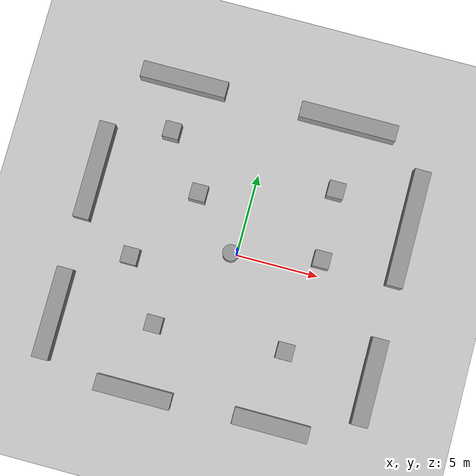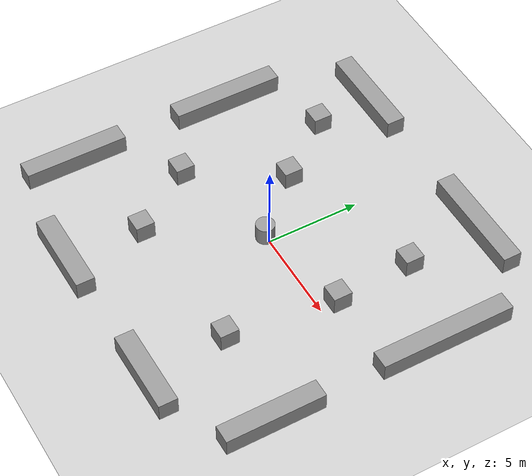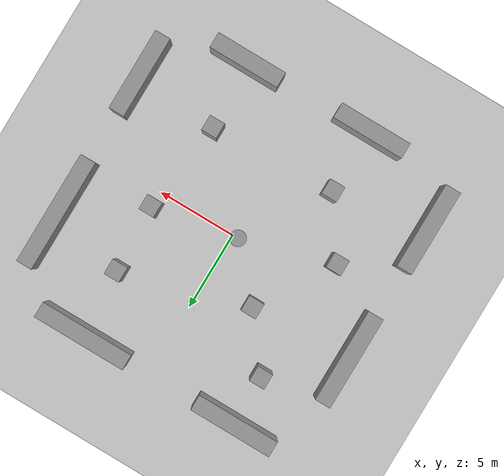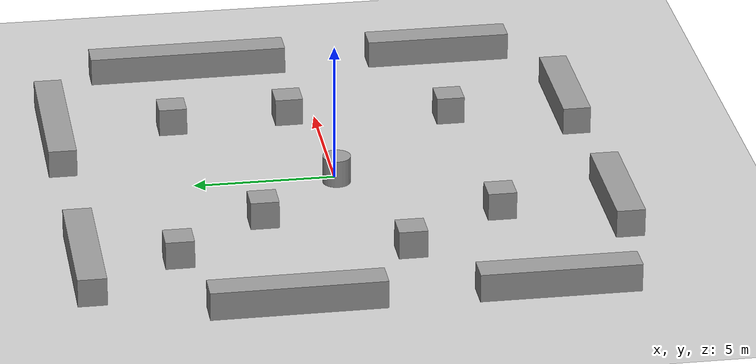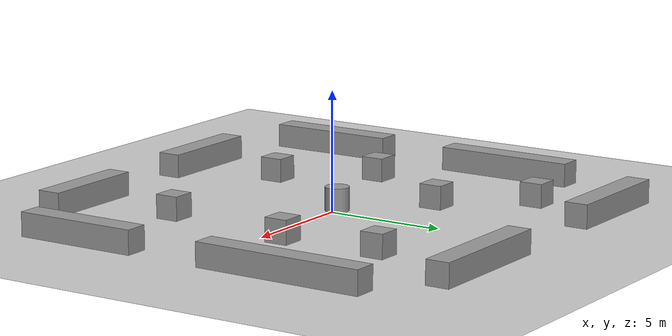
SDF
<sdf version="1.6">
 <world name="default">
  <light name="sun" type="directional">
   <pose>0 0 10 0 -0 0</pose>
   <diffuse>0.8 0.8 0.8 1</diffuse>
   <specular>0.2 0.2 0.2 1</specular>
   <attenuation>
    <range>1000</range>
    <constant>0.9</constant>
    <linear>0.01</linear>
    <quadratic>0.001</quadratic>
   </attenuation>
   <direction>-0.5 0.1 -0.9</direction>
  </light>
  <model name="ground_plane">
   <static>1</static>
   <link name="link">
    <collision name="collision">
     <geometry><plane><normal>0 0 1</normal><size>100 100</size></plane></geometry>
     <surface>
      <contact><collide_bitmask>65535</collide_bitmask></contact>
      <friction><ode><mu>100</mu><mu2>50</mu2></ode></friction>
     </surface>
    </collision>
    <visual name="visual">
     <cast_shadows>0</cast_shadows>
     <geometry><plane><normal>0 0 1</normal><size>100 100</size></plane></geometry>
     <material>
      <script><uri>file://media/materials/scripts/gazebo.material</uri><name>Gazebo/Grey</name></script>
     </material>
    </visual>
   </link>
  </model>
  <gravity>0 0 -9.8</gravity>
  <magnetic_field>6e-06 2.3e-05 -4.2e-05</magnetic_field>
  <atmosphere type="adiabatic"/>
  <physics name="default_physics" default="0" type="ode">
   <max_step_size>0.001</max_step_size>
   <real_time_factor>1</real_time_factor>
   <real_time_update_rate>1000</real_time_update_rate>
  </physics>
  <scene><ambient>0.4 0.4 0.4 1</ambient><background>0.7 0.7 0.7 1</background><shadows>1</shadows></scene>
  <audio><device>default</device></audio>
  <spherical_coordinates>
   <surface_model>EARTH_WGS84</surface_model>
   <latitude_deg>0</latitude_deg>
   <longitude_deg>0</longitude_deg>
   <elevation>0</elevation>
   <heading_deg>0</heading_deg>
  </spherical_coordinates>
  <model name="unit_box_0">
   <pose>-3.68472 -5.26762 0.499995 0 1e-05 0</pose>
   <link name="link">
    <inertial>
     <mass>1</mass>
     <inertia>
      <ixx>0.166667</ixx>
      <ixy>0</ixy>
      <ixz>0</ixz>
      <iyy>0.166667</iyy>
      <iyz>0</iyz>
      <izz>0.166667</izz>
     </inertia>
    </inertial>
    <collision name="collision"><geometry><box><size>1 1 1</size></box></geometry></collision>
    <visual name="visual">
     <geometry><box><size>1 1 1</size></box></geometry>
     <material>
      <script><name>Gazebo/Grey</name><uri>file://media/materials/scripts/gazebo.material</uri></script>
     </material>
    </visual>
   </link>
  </model>
  <model name="unit_box_0_clone">
   <pose>-5.70585 6.20506 0.499995 0 1e-05 0</pose>
   <link name="link">
    <inertial>
     <mass>1</mass>
     <inertia>
      <ixx>0.166667</ixx>
      <ixy>0</ixy>
      <ixz>0</ixz>
      <iyy>0.166667</iyy>
      <iyz>0</iyz>
      <izz>0.166667</izz>
     </inertia>
    </inertial>
    <collision name="collision"><geometry><box><size>1 1 1</size></box></geometry></collision>
    <visual name="visual">
     <geometry><box><size>1 1 1</size></box></geometry>
     <material>
      <script><name>Gazebo/Grey</name><uri>file://media/materials/scripts/gazebo.material</uri></script>
     </material>
    </visual>
   </link>
  </model>
  <model name="unit_box_0_clone_0">
   <pose>4.72607 5.23647 0.499995 0 1e-05 0</pose>
   <link name="link">
    <inertial>
     <mass>1</mass>
     <inertia>
      <ixx>0.166667</ixx>
      <ixy>0</ixy>
      <ixz>0</ixz>
      <iyy>0.166667</iyy>
      <iyz>0</iyz>
      <izz>0.166667</izz>
     </inertia>
    </inertial>
    <collision name="collision"><geometry><box><size>1 1 1</size></box></geometry></collision>
    <visual name="visual">
     <geometry><box><size>1 1 1</size></box></geometry>
     <material>
      <script><name>Gazebo/Grey</name><uri>file://media/materials/scripts/gazebo.material</uri></script>
     </material>
    </visual>
   </link>
  </model>
  <model name="unit_box_0_clone_1">
   <pose>-3.17542 2.96357 0.499995 0 1e-05 0</pose>
   <link name="link">
    <inertial>
     <mass>1</mass>
     <inertia>
      <ixx>0.166667</ixx>
      <ixy>0</ixy>
      <ixz>0</ixz>
      <iyy>0.166667</iyy>
      <iyz>0</iyz>
      <izz>0.166667</izz>
     </inertia>
    </inertial>
    <collision name="collision"><geometry><box><size>1 1 1</size></box></geometry></collision>
    <visual name="visual">
     <geometry><box><size>1 1 1</size></box></geometry>
     <material>
      <script><name>Gazebo/Grey</name><uri>file://media/materials/scripts/gazebo.material</uri></script>
     </material>
    </visual>
   </link>
  </model>
  <model name="unit_box_0_clone_2">
   <pose>4.207 -4.82456 0.499995 0 1e-05 0</pose>
   <link name="link">
    <inertial>
     <mass>1</mass>
     <inertia>
      <ixx>0.166667</ixx>
      <ixy>0</ixy>
      <ixz>0</ixz>
      <iyy>0.166667</iyy>
      <iyz>0</iyz>
      <izz>0.166667</izz>
     </inertia>
    </inertial>
    <collision name="collision"><geometry><box><size>1 1 1</size></box></geometry></collision>
    <visual name="visual">
     <geometry><box><size>1 1 1</size></box></geometry>
     <material>
      <script><name>Gazebo/Grey</name><uri>file://media/materials/scripts/gazebo.material</uri></script>
     </material>
    </visual>
   </link>
  </model>
  <model name="unit_box_0_clone_3">
   <pose>-6.11055 -1.7367 0.499995 0 1e-05 0</pose>
   <link name="link">
    <inertial>
     <mass>1</mass>
     <inertia>
      <ixx>0.166667</ixx>
      <ixy>0</ixy>
      <ixz>0</ixz>
      <iyy>0.166667</iyy>
      <iyz>0</iyz>
      <izz>0.166667</izz>
     </inertia>
    </inertial>
    <collision name="collision"><geometry><box><size>1 1 1</size></box></geometry></collision>
    <visual name="visual">
     <geometry><box><size>1 1 1</size></box></geometry>
     <material>
      <script><name>Gazebo/Grey</name><uri>file://media/materials/scripts/gazebo.material</uri></script>
     </material>
    </visual>
   </link>
  </model>
  <model name="unit_box_0_clone_4">
   <pose>4.94564 0.982856 0.499995 0 1e-05 0</pose>
   <link name="link">
    <inertial>
     <mass>1</mass>
     <inertia>
      <ixx>0.166667</ixx>
      <ixy>0</ixy>
      <ixz>0</ixz>
      <iyy>0.166667</iyy>
      <iyz>0</iyz>
      <izz>0.166667</izz>
     </inertia>
    </inertial>
    <collision name="collision"><geometry><box><size>1 1 1</size></box></geometry></collision>
    <visual name="visual">
     <geometry><box><size>1 1 1</size></box></geometry>
     <material>
      <script><name>Gazebo/Grey</name><uri>file://media/materials/scripts/gazebo.material</uri></script>
     </material>
    </visual>
   </link>
  </model>
  <model name="unit_box">
   <pose>-3.80049 -9.39107 0.5 0 -0 1e-05</pose>
   <link name="link">
    <inertial>
     <mass>1</mass>
     <inertia>
      <ixx>0.166667</ixx>
      <ixy>0</ixy>
      <ixz>0</ixz>
      <iyy>0.166667</iyy>
      <iyz>0</iyz>
      <izz>0.166667</izz>
     </inertia>
    </inertial>
    <collision name="collision"><geometry><box><size>4.61692 1 1</size></box></geometry></collision>
    <visual name="visual">
     <geometry><box><size>4.61692 1 1</size></box></geometry>
     <material>
      <script><name>Gazebo/Grey</name><uri>file://media/materials/scripts/gazebo.material</uri></script>
     </material>
    </visual>
   </link>
  </model>
  <model name="unit_box_1">
   <pose>9.45707 -5.27408 0.49734 -0.001013 -0 -2.1e-05</pose>
   <link name="link">
    <inertial>
     <mass>1</mass>
     <inertia>
      <ixx>0.166667</ixx>
      <ixy>0</ixy>
      <ixz>0</ixz>
      <iyy>0.166667</iyy>
      <iyz>0</iyz>
      <izz>0.166667</izz>
     </inertia>
    </inertial>
    <collision name="collision"><geometry><box><size>1 5.25455 1</size></box></geometry></collision>
    <visual name="visual">
     <geometry><box><size>1 5.25455 1</size></box></geometry>
     <material>
      <script><name>Gazebo/Grey</name><uri>file://media/materials/scripts/gazebo.material</uri></script>
     </material>
    </visual>
   </link>
  </model>
  <model name="unit_box_2">
   <pose>9.461 4.11501 0.489172 -0.003003 -2e-06 -0.000733</pose>
   <link name="link">
    <inertial>
     <mass>1</mass>
     <inertia>
      <ixx>0.166667</ixx>
      <ixy>0</ixy>
      <ixz>0</ixz>
      <iyy>0.166667</iyy>
      <iyz>0</iyz>
      <izz>0.166667</izz>
     </inertia>
    </inertial>
    <collision name="collision"><geometry><box><size>1 7.21776 1</size></box></geometry></collision>
    <visual name="visual">
     <geometry><box><size>1 7.21776 1</size></box></geometry>
     <material>
      <script><name>Gazebo/Grey</name><uri>file://media/materials/scripts/gazebo.material</uri></script>
     </material>
    </visual>
   </link>
  </model>
  <model name="unit_box_3">
   <pose>4.40792 9.48012 0.499997 -5e-06 0 -0.00035</pose>
   <link name="link">
    <inertial>
     <mass>1</mass>
     <inertia>
      <ixx>0.166667</ixx>
      <ixy>0</ixy>
      <ixz>0</ixz>
      <iyy>0.166667</iyy>
      <iyz>0</iyz>
      <izz>0.166667</izz>
     </inertia>
    </inertial>
    <collision name="collision"><geometry><box><size>5.97923 1 1</size></box></geometry></collision>
    <visual name="visual">
     <geometry><box><size>5.97923 1 1</size></box></geometry>
     <material>
      <script><name>Gazebo/Grey</name><uri>file://media/materials/scripts/gazebo.material</uri></script>
     </material>
    </visual>
   </link>
  </model>
  <model name="unit_box_4">
   <pose>-5.81528 9.41258 0.497226 0 -0.001046 -3.1e-05</pose>
   <link name="link">
    <inertial>
     <mass>1</mass>
     <inertia>
      <ixx>0.166667</ixx>
      <ixy>0</ixy>
      <ixz>0</ixz>
      <iyy>0.166667</iyy>
      <iyz>0</iyz>
      <izz>0.166667</izz>
     </inertia>
    </inertial>
    <collision name="collision"><geometry><box><size>5.30353 1 1</size></box></geometry></collision>
    <visual name="visual">
     <geometry><box><size>5.30353 1 1</size></box></geometry>
     <material>
      <script><name>Gazebo/Grey</name><uri>file://media/materials/scripts/gazebo.material</uri></script>
     </material>
    </visual>
   </link>
  </model>
  <model name="unit_box_5">
   <pose>-9.60103 -6.18184 0.496664 0.001208 -0 -4e-05</pose>
   <link name="link">
    <inertial>
     <mass>1</mass>
     <inertia>
      <ixx>0.166667</ixx>
      <ixy>0</ixy>
      <ixz>0</ixz>
      <iyy>0.166667</iyy>
      <iyz>0</iyz>
      <izz>0.166667</izz>
     </inertia>
    </inertial>
    <collision name="collision"><geometry><box><size>1 5.525 1</size></box></geometry></collision>
    <visual name="visual">
     <geometry><box><size>1 5.525 1</size></box></geometry>
     <material>
      <script><name>Gazebo/Grey</name><uri>file://media/materials/scripts/gazebo.material</uri></script>
     </material>
    </visual>
   </link>
  </model>
  <model name="unit_box_6">
   <pose>-9.55416 2.66426 0.495196 -0.001603 -0 -0.000107</pose>
   <link name="link">
    <inertial>
     <mass>1</mass>
     <inertia>
      <ixx>0.166667</ixx>
      <ixy>0</ixy>
      <ixz>0</ixz>
      <iyy>0.166667</iyy>
      <iyz>0</iyz>
      <izz>0.166667</izz>
     </inertia>
    </inertial>
    <collision name="collision"><geometry><box><size>1 5.99524 1</size></box></geometry></collision>
    <visual name="visual">
     <geometry><box><size>1 5.99524 1</size></box></geometry>
     <material>
      <script><name>Gazebo/Grey</name><uri>file://media/materials/scripts/gazebo.material</uri></script>
     </material>
    </visual>
   </link>
  </model>
  <model name="unit_box_7">
   <pose>4.4848 -9.17706 0.5 0 -0 3.4e-05</pose>
   <link name="link">
    <inertial>
     <mass>1</mass>
     <inertia>
      <ixx>0.166667</ixx>
      <ixy>0</ixy>
      <ixz>0</ixz>
      <iyy>0.166667</iyy>
      <iyz>0</iyz>
      <izz>0.166667</izz>
     </inertia>
    </inertial>
    <collision name="collision"><geometry><box><size>4.55022 1 1</size></box></geometry></collision>
    <visual name="visual">
     <geometry><box><size>4.55022 1 1</size></box></geometry>
     <material>
      <script><name>Gazebo/Grey</name><uri>file://media/materials/scripts/gazebo.material</uri></script>
     </material>
    </visual>
   </link>
  </model>
  <model name="unit_cylinder">
   <pose>-0.382456 -0.030402 0.499997 3e-06 4e-06 -0</pose>
   <link name="link">
    <inertial>
     <mass>1</mass>
     <inertia><ixx>0.145833</ixx><ixy>0</ixy><ixz>0</ixz><iyy>0.145833</iyy><iyz>0</iyz><izz>0.125</izz></inertia>
    </inertial>
    <collision name="collision">
     <geometry><cylinder><radius>0.5</radius><length>1</length></cylinder></geometry>
    </collision>
    <visual name="visual">
     <geometry><cylinder><radius>0.5</radius><length>1</length></cylinder></geometry>
     <material>
      <script><name>Gazebo/Grey</name><uri>file://media/materials/scripts/gazebo.material</uri></script>
     </material>
    </visual>
   </link>
  </model>
 </world>
</sdf>
